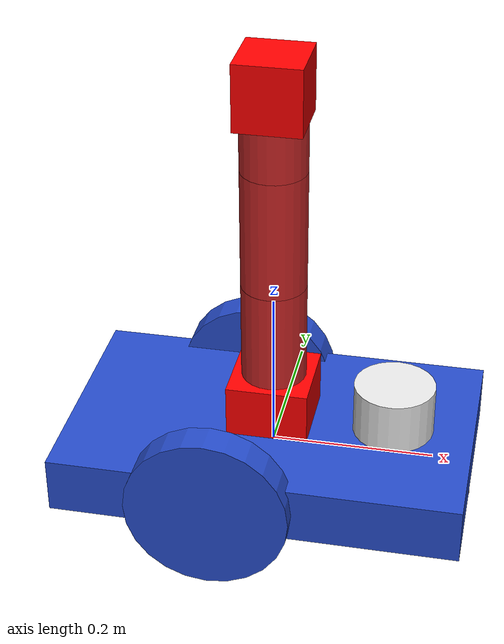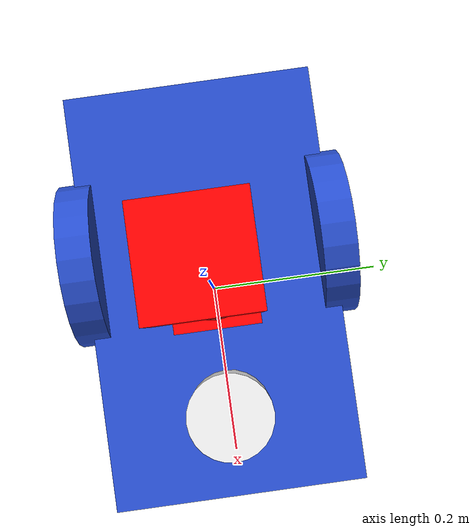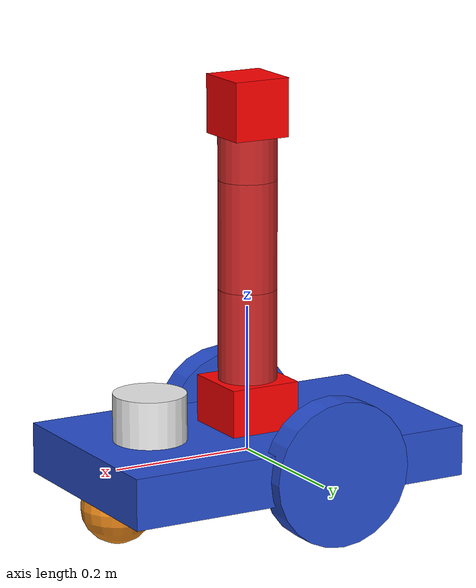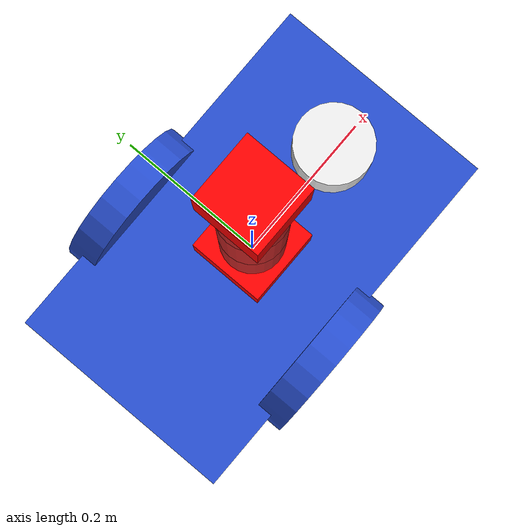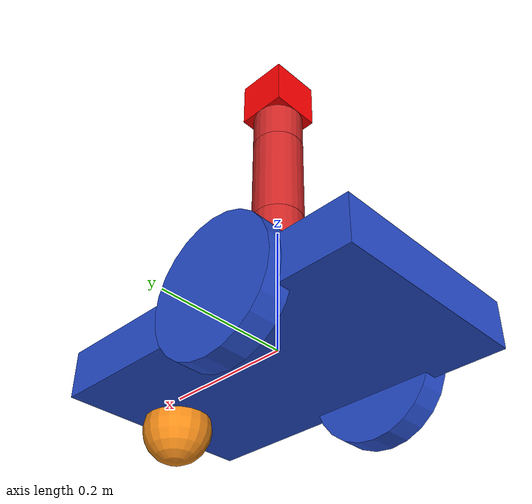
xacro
<?xml version="1.0" ?>
<robot name="m2wr" xmlns:xacro="https://www.ros.org/wiki/xacro" >

  <xacro:include filename="$(find inspection_robot)/urdf/materials.xacro" />
  <xacro:include filename="$(find inspection_robot)/urdf/robot_assignment.gazebo" />

  <xacro:macro name="cylinder_inertia" params="mass r l">
    <inertia ixx="${mass*(3*r*r+l*l)/12}" ixy = "0" ixz = "0"
    iyy="${mass*(3*r*r+l*l)/12}" iyz = "0" izz="${mass*(r*r)/2}" />
  </xacro:macro>

  <xacro:macro name="link_wheel" params="name">
    <link name="${name}">
      <inertial>
        <mass value="0.2"/>
        <origin rpy="0 1.5707 1.5707" xyz="0 0 0"/>
      <inertia ixx="0.000526666666667" ixy="0" ixz="0" iyy="0.000526666666667" iyz="0" izz="0.001"/>
      </inertial>
      <collision name="link_right_wheel_collision">
        <origin rpy="0 1.5707 1.5707" xyz="0 0 0"/>
        <geometry>
          <cylinder length="0.04" radius="0.1"/>
        </geometry>
      </collision>
      <visual name="${name}_visual">
        <origin rpy="0 1.5707 1.5707" xyz="0 0 0"/>
        <geometry>
          <cylinder length="0.04" radius="0.1"/>
        </geometry>
      </visual>
    </link>
  </xacro:macro>

  <xacro:macro name="arm_link" params="name arm_link_length xyz_origin">
		<link name="${name}">
			<inertial>
				<origin xyz="0 0 0" rpy="0 0 0"/>
				<mass value="0.025"/>
				<inertia ixx="0.000010279" ixy="0" ixz="0" iyy="0.000010279" iyz="0" izz="0.000007225"/>
			</inertial>
			<collision name="${name}_collision">
				<origin rpy="0 0 0" xyz="${xyz_origin}"/>
        <geometry>
          <cylinder length="${arm_link_length}" radius="0.04"/>
        </geometry>
			</collision>
			<visual name="${name}_visual">
				<origin rpy="0 0 0" xyz="${xyz_origin}"/>
        <geometry>
          <cylinder length="${arm_link_length}" radius="0.04"/>
        </geometry>
			</visual>
		</link>
	</xacro:macro>

  <xacro:macro name="joint_wheel" params="name child origin_xyz">
    <joint name="${name}" type="continuous">
      <origin rpy="0 0 0" xyz="${origin_xyz}"/>
      <child link="${child}"/>
      <parent link="base_link"/>
      <axis rpy="0 0 0" xyz="0 1 0"/>
      <limit effort="10000" velocity="1000"/>
      <joint_properties damping="1.0" friction="1.0"/>
    </joint>
  </xacro:macro>

  <xacro:macro name="revolute_joint" params="name parent child origin_xyz axis_xyz">
    <joint name="${name}" type="revolute">
      <axis xyz="${axis_xyz}"/>
      <limit effort="1000.0" lower="-3.14" upper="3.14" velocity="0.02"/>
      <origin rpy="0 0 0" xyz="${origin_xyz}"/>
      <parent link="${parent}"/>
      <child link="${child}"/>
    </joint>
  </xacro:macro>

  <link name="base_link">
    <!-- pose and inertial -->
    <pose>0 0 0.1 0 0 0</pose>

    <inertial>
      <mass value="5"/>
      <origin rpy="0 0 0" xyz="0 0 0.1"/>
      <inertia ixx="0.0395416666667" ixy="0" ixz="0" iyy="0.106208333333" iyz="0" izz="0.106208333333"/>
    </inertial>

    <collision name="collision_chassis">
      <geometry>
      <box size="0.5 0.3 0.07"/>
      </geometry>
    </collision>

    <visual>
      <origin rpy="0 0 0" xyz="0 0 0"/>
      <geometry>
        <box size="0.5 0.3 0.07"/>
      </geometry>
      <material name="blue"/>
    </visual>

      <!-- caster front -->
    <collision name="caster_front_collision">
      <origin rpy=" 0 0 0" xyz="0.35 0 -0.05"/>
      <geometry>
        <sphere radius="0.05"/>
      </geometry>
      <surface>
        <friction>
          <ode>
            <mu>0</mu>
            <mu2>0</mu2>
            <slip1>1.0</slip1>
            <slip2>1.0</slip2>
          </ode>
        </friction>
      </surface>
    </collision>
    <visual name="caster_front_visual">
      <origin rpy=" 0 0 0" xyz="0.2 0 -0.05"/>
      <geometry>
        <sphere radius="0.05"/>
      </geometry>
    </visual>
  </link>

  <!-- Create wheels -->

  <xacro:link_wheel name="link_right_wheel" />
  <xacro:link_wheel name="link_left_wheel" />
  <xacro:joint_wheel name="joint_right_wheel"  child="link_right_wheel"  origin_xyz="-0.05 0.15 0"  />
  <xacro:joint_wheel name="joint_left_wheel"   child="link_left_wheel"   origin_xyz="-0.05 -0.15 0"  />

  <link name="laser">
    <inertial>
      <origin xyz="0 0 0" rpy="0 0 0" />
      <mass value="1" />
      <xacro:cylinder_inertia mass="1" r="0.05" l="0.1" />
    </inertial>

    <visual>
      <origin xyz="0 0 0" rpy="0 0 0" />
      <geometry>
        <cylinder radius="0.05" length="0.1"/>
      </geometry>
      <material name="white" />
    </visual>

    <collision>
      <origin xyz="0 0 0" rpy="0 0 0"/>
      <geometry>
        <cylinder radius="0.05" length="0.1"/>
      </geometry>
    </collision>
  </link>

  <joint name="joint_laser" type="fixed">
    <origin xyz="0.15 0 0.05" rpy="0 0 0"/>
    <parent link="base_link"/>
    <child link="laser"/>
  </joint>

<!--arm definition -->

  <link name="arm_base_link">
  	<inertial>
  		<mass value="0.1"/>
  		<origin xyz="0 0 0" rpy="0 0 0" />
  		<inertia ixx="0.0000416666667" ixy="0" ixz="0" iyy="0.0000416666667" iyz="0" izz="0.0000416666667"/>
  	</inertial>
  	<collision>
  	  <origin xyz="0 0 0" rpy="0 0 0"/>
      <geometry>
        <box size="0.1 0.1 0.1"/>
      </geometry>
  	</collision>
  	<visual>
  	  <origin xyz="0 0 0" rpy="0 0 0"/>
      <geometry>
        <box size="0.1 0.1 0.1"/>
      </geometry>
      <material name="red" />
  	</visual>
  </link>

  <joint name="arm_base_to_base" type="fixed">
  	<origin rpy="0 0 0" xyz="0 0 0.05"/>
  	<parent link="base_link"/>
  	<child link="arm_base_link"/>
  </joint>

  <xacro:arm_link name="arm_link_01" arm_link_length="0.15" xyz_origin="0 0 0.075"/>
  <xacro:arm_link name="arm_link_02" arm_link_length="0.15" xyz_origin="0 0 0.075"/>
  <xacro:arm_link name="arm_link_03" arm_link_length="0.06" xyz_origin="0 0 0.03"/>

  <xacro:revolute_joint name="arm_joint_01" child="arm_link_01" parent="arm_base_link" origin_xyz="0 0 0.025" axis_xyz="0 0 1"/>
  <xacro:revolute_joint name="arm_joint_02" child="arm_link_02" parent="arm_link_01" origin_xyz="0 0 0.15" axis_xyz="1 0 0"/>
  <xacro:revolute_joint name="arm_joint_03" child="arm_link_03" parent="arm_link_02" origin_xyz="0 0 0.15" axis_xyz="0 1 0"/>

    <link name="camera_link">
  	<inertial>
  		<mass value="0.025"/>
  		<origin xyz="0 0 0" rpy="0 0 0" />
  		<inertia ixx="0.000010279" ixy="0" ixz="0" iyy="0.000010279" iyz="0" izz="0.000007225"/>
  	</inertial>
  	<collision>
  	  <origin xyz="0 0 0" rpy="0 0 0"/>
      <geometry>
        <box size="0.08 0.08 0.08"/>
      </geometry>
  	</collision>
  	<visual>
  	  <origin xyz="0 0 0" rpy="0 0 1.57"/>
      <geometry>
        <box size="0.08 0.08 0.08"/>
      </geometry>
      <material name="red" >
        <color rgba="1 0 0 1"/>
      </material>
  	</visual>
  </link>

  <joint name="camera_joint" type="fixed">
  	<origin rpy="0 0 0" xyz="0 0 0.1"/>
  	<parent link="arm_link_03"/>
  	<child link="camera_link"/>
  </joint>

<transmission name="arm_joint_01_trans">
	<type>transmission_interface/SimpleTransmission</type>
	<joint name="arm_joint_01">
		<hardwareInterface>hardware_interface/EffortJointInterface</hardwareInterface>
	</joint>
	<actuator name="motor1">
		<hardwareInterface>hardware_interface/EffortJointInterface</hardwareInterface>
		<mechanicalInterface>1</mechanicalInterface>
	</actuator>
</transmission>

<transmission name="arm_joint_02_trans">
	<type>transmission_interface/SimpleTransmission</type>
	<joint name="arm_joint_02">
		<hardwareInterface>hardware_interface/EffortJointInterface</hardwareInterface>
	</joint>
	<actuator name="motor2">
		<hardwareInterface>hardware_interface/EffortJointInterface</hardwareInterface>
		<mechanicalInterface>1</mechanicalInterface>
	</actuator>
</transmission>

<transmission name="arm_joint_03_trans">
	<type>transmission_interface/SimpleTransmission</type>
	<joint name="arm_joint_03">
		<hardwareInterface>hardware_interface/EffortJointInterface</hardwareInterface>
	</joint>
	<actuator name="motor3">
		<hardwareInterface>hardware_interface/EffortJointInterface</hardwareInterface>
		<mechanicalInterface>1</mechanicalInterface>
	</actuator>
</transmission>

</robot>
